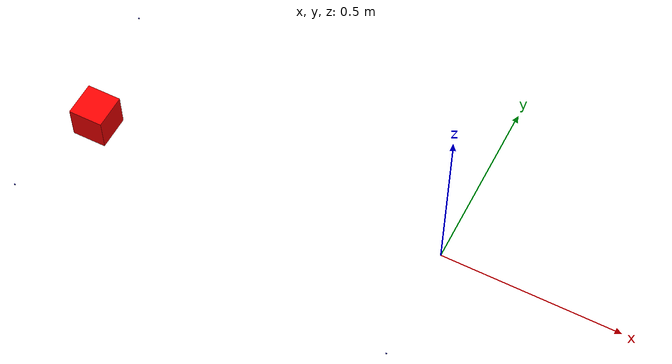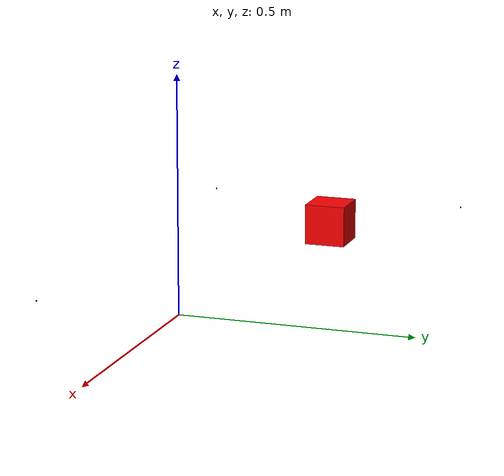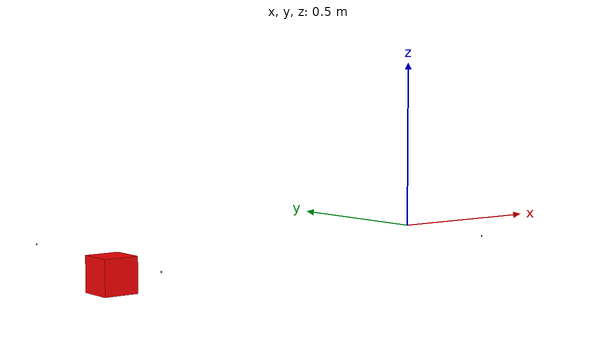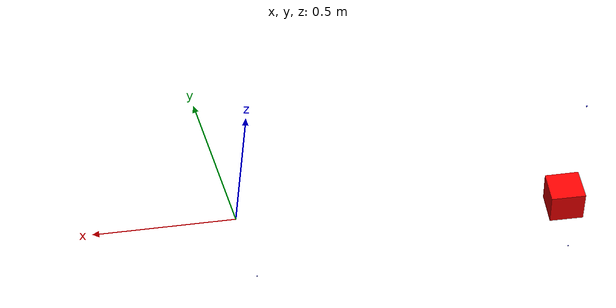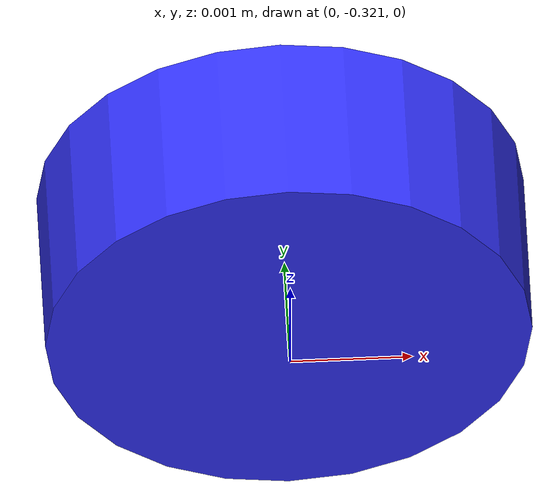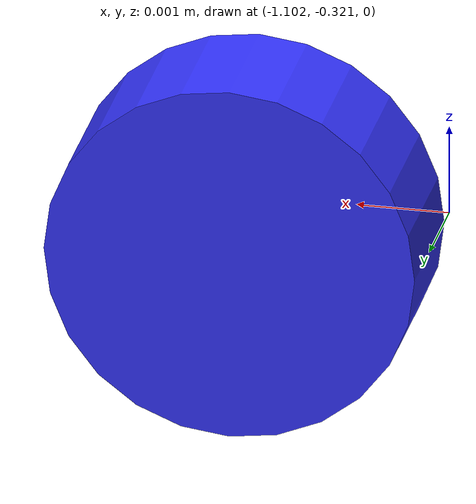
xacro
<?xml version="1.0"?>
<robot xmlns:xacro="http://www.ros.org/wiki/xacro" >

    <xacro:include filename="inertial_macros.xacro"/>

    <xacro:property name="chassis_length" value="0.1"/>
    <xacro:property name="chassis_width" value="0.1"/>
    <xacro:property name="chassis_height" value="0.10"/>
    <xacro:property name="chassis_mass" value="10.0"/>
    <xacro:property name="wheel_radius" value="0.002"/>
    <xacro:property name="wheel_thickness" value="0.0015"/>
    <xacro:property name="wheel_mass" value="0.0009"/>
    <xacro:property name="wheel_offset_x" value="1.1"/>
    <xacro:property name="wheel_offset_y" value="0.32"/>
    <xacro:property name="wheel_offset_z" value="0.1"/>
    <xacro:property name="caster_wheel_radius" value="0.01"/>
    <xacro:property name="caster_wheel_mass" value="0.01"/>
    <xacro:property name="caster_wheel_offset_x" value="0.075"/>
    <xacro:property name="caster_wheel_offset_z" value="${wheel_offset_z - wheel_radius + caster_wheel_radius}"/>

    <material name="white">
        <color rgba="1 1 1 1" />
    </material>

    <material name="orange">
        <color rgba="1 0.3 0.1 1"/>
    </material>

    <material name="blue">
        <color rgba="0.2 0.2 1 1"/>
    </material>

    <material name="black">
        <color rgba="0 0 0 1"/>
    </material>

    <material name="red">
        <color rgba="1 0 0 1"/>
    </material>

    <!-- BASE LINK -->

    <link name="base_link">

    </link>

    <!-- BASE_FOOTPRINT LINK -->

    <joint name="base_footprint_joint" type="fixed">
        <parent link="base_link"/>
        <child link="base_footprint"/>
        <origin xyz="0 0 0" rpy="0 0 0"/>
    </joint>

    <link name="base_footprint">
    </link>

    <!-- CHASSIS LINK -->

    <joint name="chassis_joint" type="fixed">
        <parent link="base_link"/>
        <child link="chassis"/>
        <origin xyz="${-wheel_offset_x} 0 ${-wheel_offset_z}"/>
    </joint>

    <link name="chassis">
        <visual>
            <origin xyz="${chassis_length/2} 0 ${chassis_height/2}"/>
            <geometry>
                <box size="${chassis_length} ${chassis_width} ${chassis_height}"/>
            </geometry>
            <material name="red"/>
        </visual>
        <collision>
            <origin xyz="${chassis_length/2} 0 ${chassis_height/2}"/>
            <geometry>
                <box size="${chassis_length} ${chassis_width} ${chassis_height}"/>
            </geometry>
        </collision>
        <xacro:inertial_box mass="0.5" x="${chassis_length}" y="${chassis_width}" z="${chassis_height}">
            <origin xyz="${chassis_length/2} 0 ${chassis_height/2}" rpy="0 0 0"/>
        </xacro:inertial_box>
    </link>

    <gazebo reference="chassis">
        <material>Gazebo/Red</material>
    </gazebo>

    <!-- LEFT FRONT WHEEL LINK -->

    <joint name="left_wheel_joint" type="continuous">
        <parent link="base_link"/>
        <child link="left_wheel"/>
        <origin xyz="0 ${wheel_offset_y} 0" rpy="-${pi/2} 0 0" />
        <axis xyz="0 0 1"/>
    </joint>

    <link name="left_wheel">
        <visual>
            <geometry>
                <cylinder radius="${wheel_radius}" length="${wheel_thickness}"/>
            </geometry>
            <material name="blue"/>
        </visual>
        <collision>
            <geometry>
                <sphere radius="${wheel_radius}"/>
            </geometry>
        </collision>
        <xacro:inertial_cylinder mass="${wheel_mass}" length="${wheel_thickness}" radius="${wheel_radius}">
            <origin xyz="0 0 0" rpy="0 0 0"/>
        </xacro:inertial_cylinder>
    </link>

    <gazebo reference="left_wheel">
        <material>Gazebo/Blue</material>
    </gazebo>

    <!-- RIGHT FRONT WHEEL LINK -->

    <joint name="right_wheel_joint" type="continuous">
        <parent link="base_link"/>
        <child link="right_wheel"/>
        <origin xyz="0 ${-wheel_offset_y} 0" rpy="${pi/2} 0 0" />
        <axis xyz="0 0 -1"/>
    </joint>

    <link name="right_wheel">
        <visual>
            <geometry>
                <cylinder radius="${wheel_radius}" length="${wheel_thickness}"/>
            </geometry>
            <material name="blue"/>
        </visual>
        <collision>
            <geometry>
                <sphere radius="${wheel_radius}"/>
            </geometry>
        </collision>
        <xacro:inertial_cylinder mass="${wheel_mass}" length="${wheel_thickness}" radius="${wheel_radius}">
            <origin xyz="0 0 0" rpy="0 0 0"/>
        </xacro:inertial_cylinder>
    </link>

    <gazebo reference="right_wheel">
        <material>Gazebo/Blue</material>
    </gazebo>

    <!-- LEFT BACK WHEEL LINK -->

    <joint name="left_back_wheel_joint" type="continuous">
        <parent link="base_link"/>
        <child link="left_back_wheel"/>
        <origin xyz="${-wheel_offset_x} ${wheel_offset_y} 0" rpy="-${pi/2} 0 0" />
        <axis xyz="0 0 1"/>
    </joint>

    <link name="left_back_wheel">
        <visual>
            <geometry>
                <cylinder radius="${wheel_radius}" length="${wheel_thickness}"/>
            </geometry>
            <material name="blue"/>
        </visual>
        <collision>
            <geometry>
                <sphere radius="${wheel_radius}"/>
            </geometry>
        </collision>
        <xacro:inertial_cylinder mass="${wheel_mass}" length="${wheel_thickness}" radius="${wheel_radius}">
            <origin xyz="0 0 0" rpy="0 0 0"/>
        </xacro:inertial_cylinder>
    </link>

    <gazebo reference="left_back_wheel">
        <material>Gazebo/Blue</material>
    </gazebo>

    <!-- RIGHT BACK WHEEL LINK -->

    <joint name="right_back_wheel_joint" type="continuous">
        <parent link="base_link"/>
        <child link="right_back_wheel"/>
        <origin xyz="${-wheel_offset_x} ${-wheel_offset_y} 0" rpy="${pi/2} 0 0" />
        <axis xyz="0 0 -1"/>
    </joint>

    <link name="right_back_wheel">
        <visual>
            <geometry>
                <cylinder radius="${wheel_radius}" length="${wheel_thickness}"/>
            </geometry>
            <material name="blue"/>
        </visual>
        <collision>
            <geometry>
                <sphere radius="${wheel_radius}"/>
            </geometry>
        </collision>
        <xacro:inertial_cylinder mass="${wheel_mass}" length="${wheel_thickness}" radius="${wheel_radius}">
            <origin xyz="0 0 0" rpy="0 0 0"/>
        </xacro:inertial_cylinder>
    </link>

    <gazebo reference="right_back_wheel">
        <material>Gazebo/Blue</material>
    </gazebo>

</robot>
